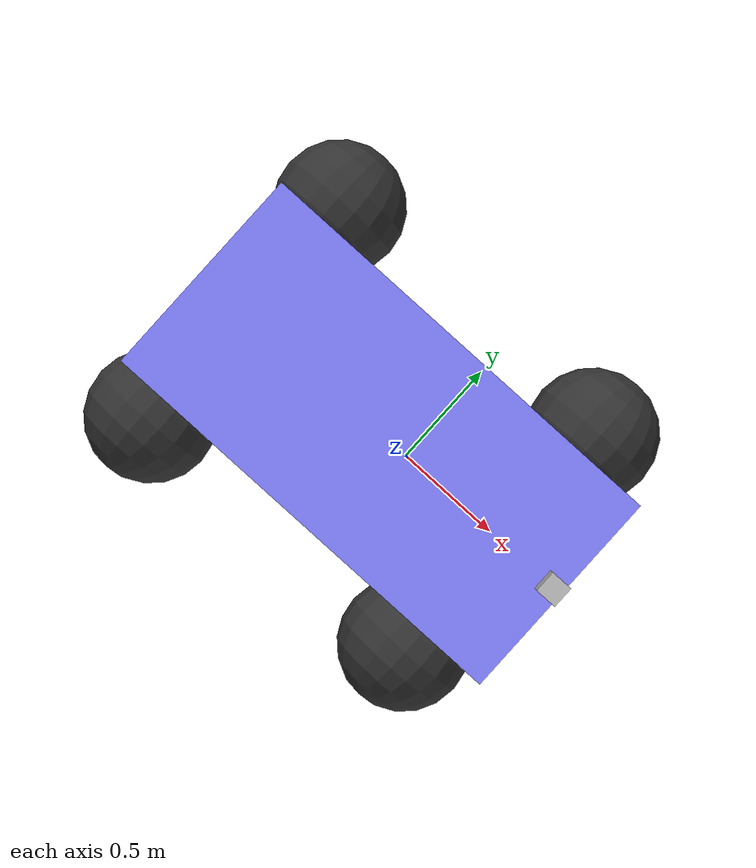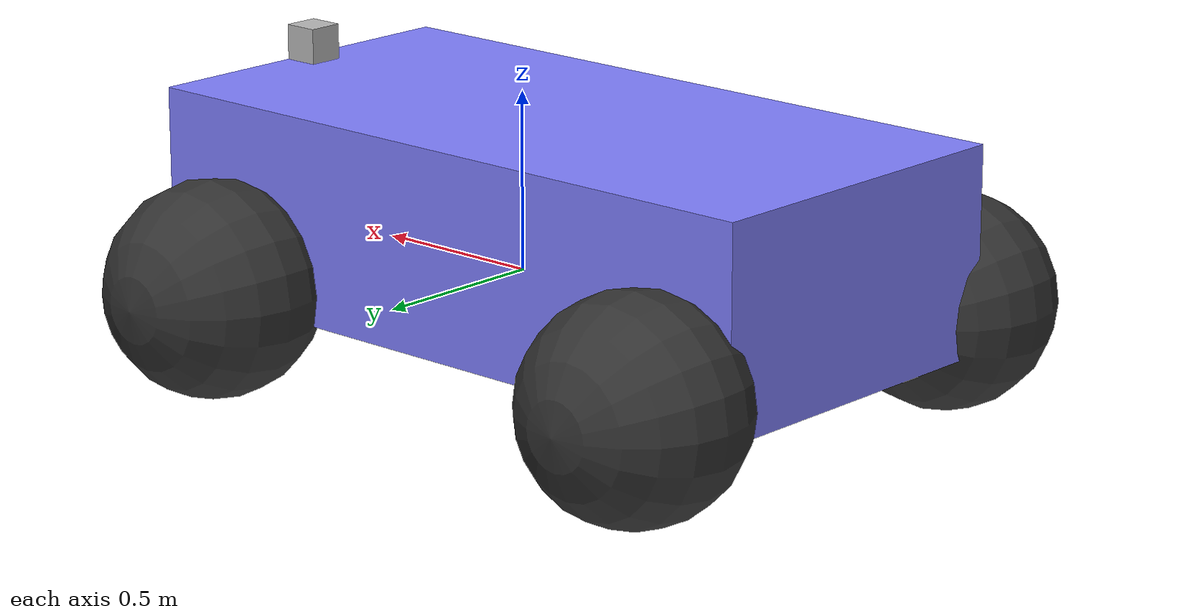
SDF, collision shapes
<?xml version="1.0" ?>
<sdf version="1.6">
    <model name='glados' xmlns:gz="http://gazebosim.org/schema">
      <link name='base_footprint'>
        <pose>-0.151427 0 0 0 0 0</pose>
      </link>

      <joint name='base_footprint_to_chassis' type='fixed'>
        <parent>base_footprint</parent>
        <child>chassis</child>
      </joint>

      <link name='chassis'>
        <pose>-0.151427 -0 0.175 0 -0 0</pose>
        <inertial>
          <mass>1.14395</mass>
          <inertia>
            <ixx>0.126164</ixx>
            <ixy>0</ixy>
            <ixz>0</ixz>
            <iyy>0.416519</iyy>
            <iyz>0</iyz>
            <izz>0.481014</izz>
          </inertia>
        </inertial>
        <visual name='visual'>
          <geometry>
            <box>
              <size>2.01142 1 0.568726</size>
            </box>
          </geometry>
          <material>
            <ambient>0.5 0.5 1.0 1</ambient>
            <diffuse>0.5 0.5 1.0 1</diffuse>
            <specular>0.0 0.0 1.0 1</specular>
          </material>
        </visual>
        <collision name='collision'>
          <geometry>
            <box>
              <size>2.01142 1 0.568726</size>
            </box>
          </geometry>
        </collision>
      </link>

      <link name='front_left_wheel'>
        <pose>0.554283 0.625029 -0.025 -1.5707 0 0</pose>
        <inertial>
          <mass>2</mass>
          <inertia>
            <ixx>0.145833</ixx>
            <ixy>0</ixy>
            <ixz>0</ixz>
            <iyy>0.145833</iyy>
            <iyz>0</iyz>
            <izz>0.125</izz>
          </inertia>
        </inertial>
        <visual name='visual'>
          <pose>0 0 0 1.5707 0 0</pose>
          <geometry>
            <!-- scale mesh to radius == 0.3 -->
            <mesh>
            <uri>package://glados_description/models/glados/meshes/mecanum_wheel_left.STL</uri>
              <scale>0.006 0.006 0.006</scale>
            </mesh>
          </geometry>
          <material>
            <ambient>0.2 0.2 0.2 1</ambient>
            <diffuse>0.2 0.2 0.2 1</diffuse>
            <specular>0.2 0.2 0.2 1</specular>
          </material>
        </visual>
        <collision name='collision'>
          <geometry>
            <sphere>
              <radius>0.3</radius>
            </sphere>
          </geometry>
          <surface>
            <friction>
              <ode>
                <mu>1.0</mu>
                <mu2>0.0</mu2>
                <fdir1 gz:expressed_in="chassis">1 -1 0</fdir1>
              </ode>
            </friction>
          </surface>
        </collision>
      </link>

      <link name='rear_left_wheel'>
        <pose>-0.957138 0.625029 -0.025 -1.5707 0 0</pose>
        <inertial>
          <mass>2</mass>
          <inertia>
            <ixx>0.145833</ixx>
            <ixy>0</ixy>
            <ixz>0</ixz>
            <iyy>0.145833</iyy>
            <iyz>0</iyz>
            <izz>0.125</izz>
          </inertia>
        </inertial>
        <visual name='visual'>
          <pose>0 0 0 1.5707 0 0</pose>
          <geometry>
            <!-- scale mesh to radius == 0.3 -->
            <mesh>
            <uri>package://glados_description/models/glados/meshes/mecanum_wheel_right.STL</uri>
              <scale>0.006 0.006 0.006</scale>
            </mesh>
          </geometry>
          <material>
            <ambient>0.2 0.2 0.2 1</ambient>
            <diffuse>0.2 0.2 0.2 1</diffuse>
            <specular>0.2 0.2 0.2 1</specular>
          </material>
        </visual>
        <collision name='collision'>
          <geometry>
            <sphere>
              <radius>0.3</radius>
            </sphere>
          </geometry>
          <surface>
            <friction>
              <ode>
                <mu>1.0</mu>
                <mu2>0.0</mu2>
                <fdir1 gz:expressed_in="chassis">1 1 0</fdir1>
              </ode>
            </friction>
          </surface>
        </collision>
      </link>

      <link name='front_right_wheel'>
        <pose>0.554282 -0.625029 -0.025 -1.5707 0 0</pose>
        <inertial>
          <mass>2</mass>
          <inertia>
            <ixx>0.145833</ixx>
            <ixy>0</ixy>
            <ixz>0</ixz>
            <iyy>0.145833</iyy>
            <iyz>0</iyz>
            <izz>0.125</izz>
          </inertia>
        </inertial>
        <visual name='visual'>
          <pose>0 0 0 1.5707 0 0</pose>
          <geometry>
            <!-- scale mesh to radius == 0.3 -->
            <mesh>
            <uri>package://glados_description/models/glados/meshes/mecanum_wheel_right.STL</uri>
              <scale>0.006 0.006 0.006</scale>
            </mesh>
          </geometry>
          <material>
            <ambient>0.2 0.2 0.2 1</ambient>
            <diffuse>0.2 0.2 0.2 1</diffuse>
            <specular>0.2 0.2 0.2 1</specular>
          </material>
        </visual>
        <collision name='collision'>
          <geometry>
            <sphere>
              <radius>0.3</radius>
            </sphere>
          </geometry>
          <surface>
            <friction>
              <ode>
                <mu>1.0</mu>
                <mu2>0.0</mu2>
                <fdir1 gz:expressed_in="chassis">1 1 0</fdir1>
              </ode>
            </friction>
          </surface>
        </collision>
      </link>

      <link name='rear_right_wheel'>
        <pose>-0.957138 -0.625029 -0.025 -1.5707 0 0</pose>
        <inertial>
          <mass>2</mass>
          <inertia>
            <ixx>0.145833</ixx>
            <ixy>0</ixy>
            <ixz>0</ixz>
            <iyy>0.145833</iyy>
            <iyz>0</iyz>
            <izz>0.125</izz>
          </inertia>
        </inertial>
        <visual name='visual'>
          <pose>0 0 0 1.5707 0 0</pose>
          <geometry>
            <!-- scale mesh to radius == 0.3 -->
            <mesh>
            <uri>package://glados_description/models/glados/meshes/mecanum_wheel_left.STL</uri>
              <scale>0.006 0.006 0.006</scale>
            </mesh>
          </geometry>
          <material>
            <ambient>0.2 0.2 0.2 1</ambient>
            <diffuse>0.2 0.2 0.2 1</diffuse>
            <specular>0.2 0.2 0.2 1</specular>
          </material>
        </visual>
        <collision name='collision'>
          <geometry>
            <sphere>
              <radius>0.3</radius>
            </sphere>
          </geometry>
          <surface>
            <friction>
              <ode>
                <mu>1.0</mu>
                <mu2>0.0</mu2>
                <fdir1 gz:expressed_in="chassis">1 -1 0</fdir1>
              </ode>
            </friction>
          </surface>
        </collision>
      </link>

      <joint name='front_left_wheel_joint' type='revolute'>
        <parent>chassis</parent>
        <child>front_left_wheel</child>
        <axis>
          <xyz>0 0 1</xyz>
          <limit>
            <lower>-1.79769e+308</lower>
            <upper>1.79769e+308</upper>
          </limit>
        </axis>
      </joint>

      <joint name='front_right_wheel_joint' type='revolute'>
        <parent>chassis</parent>
        <child>front_right_wheel</child>
        <axis>
          <xyz>0 0 1</xyz>
          <limit>
            <lower>-1.79769e+308</lower>
            <upper>1.79769e+308</upper>
          </limit>
        </axis>
      </joint>

      <joint name='rear_left_wheel_joint' type='revolute'>
        <parent>chassis</parent>
        <child>rear_left_wheel</child>
        <axis>
          <xyz>0 0 1</xyz>
          <limit>
            <lower>-1.79769e+308</lower>
            <upper>1.79769e+308</upper>
          </limit>
        </axis>
      </joint>

      <joint name='rear_right_wheel_joint' type='revolute'>
        <parent>chassis</parent>
        <child>rear_right_wheel</child>
        <axis>
          <xyz>0 0 1</xyz>
          <limit>
            <lower>-1.79769e+308</lower>
            <upper>1.79769e+308</upper>
          </limit>
        </axis>
      </joint>

      <link name="lidar_link">
        <pose relative_to="chassis">0.95571 0 0.334363 0 0 0</pose>
        <inertial>
          <mass>0.1</mass>
          <inertia>
            <ixx>0.000166667</ixx>
            <iyy>0.000166667</iyy>
            <izz>0.000166667</izz>
          </inertia>
        </inertial>
        <collision name="collision">
          <geometry>
            <box>
              <size>0.1 0.1 0.1</size>
            </box>
          </geometry>
        </collision>
        <visual name="visual">
          <geometry>
            <box>
              <size>0.1 0.1 0.1</size>
            </box>
          </geometry>
        </visual>
        <sensor name='gpu_lidar' type='gpu_lidar'>
          <pose>0 0 0 0 0 0</pose>
          <topic>scan</topic>
           <gz_frame_id>lidar_link</gz_frame_id>
          <update_rate>10</update_rate>
          <lidar>
            <scan>
              <horizontal>
                <samples>640</samples>
                <resolution>1</resolution>
                <min_angle>-1.396263</min_angle>
                <max_angle>1.396263</max_angle>
              </horizontal>
              <vertical>
                <samples>1</samples>
                <resolution>1</resolution>
                <min_angle>0.0</min_angle>
                <max_angle>0.0</max_angle>
              </vertical>
            </scan>
            <range>
              <min>0.08</min>
              <max>10.0</max>
              <resolution>0.01</resolution>
            </range>
          </lidar>
          <visualize>true</visualize>
        </sensor>
      </link>

      <joint name='lidar_joint' type='fixed'>
        <parent>chassis</parent>
        <child>lidar_link</child>
      </joint>

      <plugin
        filename="gz-sim-mecanum-drive-system"
        name="gz::sim::systems::MecanumDrive">
        <front_left_joint>front_left_wheel_joint</front_left_joint>
        <front_right_joint>front_right_wheel_joint</front_right_joint>
        <back_left_joint>rear_left_wheel_joint</back_left_joint>
        <back_right_joint>rear_right_wheel_joint</back_right_joint>
        <wheel_separation>1.25</wheel_separation>
        <wheelbase>1.511</wheelbase>
        <wheel_radius>0.3</wheel_radius>
        <min_acceleration>-5</min_acceleration>
        <max_acceleration>5</max_acceleration>
      </plugin>

    </model>
</sdf>
